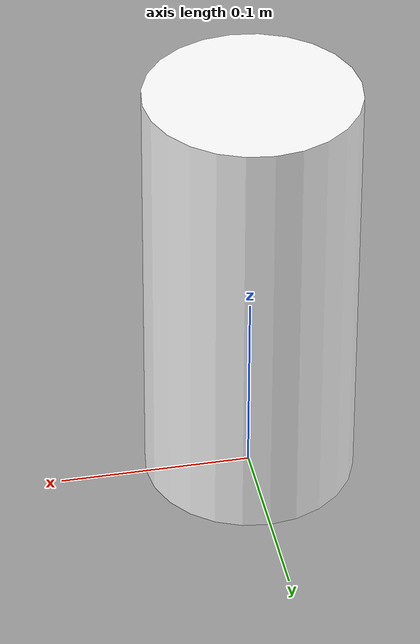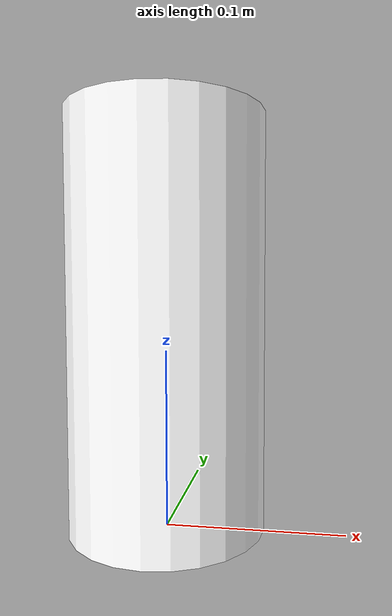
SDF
<?xml version='1.0'?>
<sdf version='1.7'>
  <model name='beer'>
    <link name='link'>
      <pose>-0 -0 0.115 0 -0 0</pose>
      <inertial>
        <mass>0.39</mass>
        <inertia>
          <ixx>0.00058</ixx>
          <ixy>0</ixy>
          <ixz>0</ixz>
          <iyy>0.00058</iyy>
          <iyz>0</iyz>
          <izz>0.00019</izz>
        </inertia>
        <pose>0 0 0 0 -0 0</pose>
      </inertial>
      <self_collide>0</self_collide>
      <enable_wind>0</enable_wind>
      <kinematic>0</kinematic>
      <gravity>1</gravity>
      <visual name='visual'>
        <geometry>
          <cylinder>
            <radius>0.055</radius>
            <length>0.23</length>
          </cylinder>
        </geometry>
        <material>
          <script>
            <uri>model://beer/materials/scripts</uri>
            <uri>model://beer/materials/textures</uri>
            <name>Beer/Diffuse</name>
          </script>
          <shader type='pixel'>
            <normal_map>__default__</normal_map>
          </shader>
          <ambient>1 1 1 1</ambient>
          <diffuse>1 1 1 1</diffuse>
          <specular>0 0 0 1</specular>
          <emissive>0 0 0 1</emissive>
        </material>
        <pose>0 0 0 0 -0 0</pose>
        <transparency>0</transparency>
        <cast_shadows>1</cast_shadows>
      </visual>
      <collision name='collision_1'>
        <laser_retro>0</laser_retro>
        <max_contacts>10</max_contacts>
        <pose>0 0 0 0 -0 0</pose>
        <geometry>
          <cylinder>
            <radius>0.055</radius>
            <length>0.23</length>
          </cylinder>
        </geometry>
        <surface>
          <friction>
            <ode>
              <mu>1</mu>
              <mu2>1</mu2>
              <fdir1>0 0 0</fdir1>
              <slip1>0</slip1>
              <slip2>0</slip2>
            </ode>
            <torsional>
              <coefficient>1</coefficient>
              <patch_radius>0</patch_radius>
              <surface_radius>0</surface_radius>
              <use_patch_radius>1</use_patch_radius>
              <ode>
                <slip>0</slip>
              </ode>
            </torsional>
          </friction>
          <bounce>
            <restitution_coefficient>0</restitution_coefficient>
            <threshold>1e+06</threshold>
          </bounce>
          <contact>
            <collide_without_contact>0</collide_without_contact>
            <collide_without_contact_bitmask>1</collide_without_contact_bitmask>
            <collide_bitmask>1</collide_bitmask>
            <ode>
              <soft_cfm>0</soft_cfm>
              <soft_erp>0.2</soft_erp>
              <kp>1e+13</kp>
              <kd>1</kd>
              <max_vel>0.01</max_vel>
              <min_depth>0</min_depth>
            </ode>
            <bullet>
              <split_impulse>1</split_impulse>
              <split_impulse_penetration_threshold>-0.01</split_impulse_penetration_threshold>
              <soft_cfm>0</soft_cfm>
              <soft_erp>0.2</soft_erp>
              <kp>1e+13</kp>
              <kd>1</kd>
            </bullet>
          </contact>
        </surface>
      </collision>
      <collision name='collision'>
        <laser_retro>0</laser_retro>
        <max_contacts>10</max_contacts>
        <pose>0 0 0 0 -0 0</pose>
        <geometry>
          <cylinder>
            <radius>0.055</radius>
            <length>0.23</length>
          </cylinder>
        </geometry>
        <surface>
          <friction>
            <ode>
              <mu>1</mu>
              <mu2>1</mu2>
              <fdir1>0 0 0</fdir1>
              <slip1>0</slip1>
              <slip2>0</slip2>
            </ode>
            <torsional>
              <coefficient>1</coefficient>
              <patch_radius>0</patch_radius>
              <surface_radius>0</surface_radius>
              <use_patch_radius>1</use_patch_radius>
              <ode>
                <slip>0</slip>
              </ode>
            </torsional>
          </friction>
          <bounce>
            <restitution_coefficient>0</restitution_coefficient>
            <threshold>1e+06</threshold>
          </bounce>
          <contact>
            <collide_without_contact>0</collide_without_contact>
            <collide_without_contact_bitmask>1</collide_without_contact_bitmask>
            <collide_bitmask>1</collide_bitmask>
            <ode>
              <soft_cfm>0</soft_cfm>
              <soft_erp>0.2</soft_erp>
              <kp>1e+13</kp>
              <kd>1</kd>
              <max_vel>0.01</max_vel>
              <min_depth>0</min_depth>
            </ode>
            <bullet>
              <split_impulse>1</split_impulse>
              <split_impulse_penetration_threshold>-0.01</split_impulse_penetration_threshold>
              <soft_cfm>0</soft_cfm>
              <soft_erp>0.2</soft_erp>
              <kp>1e+13</kp>
              <kd>1</kd>
            </bullet>
          </contact>
        </surface>
      </collision>
    </link>
    <static>0</static>
    <allow_auto_disable>1</allow_auto_disable>
  </model>
</sdf>
